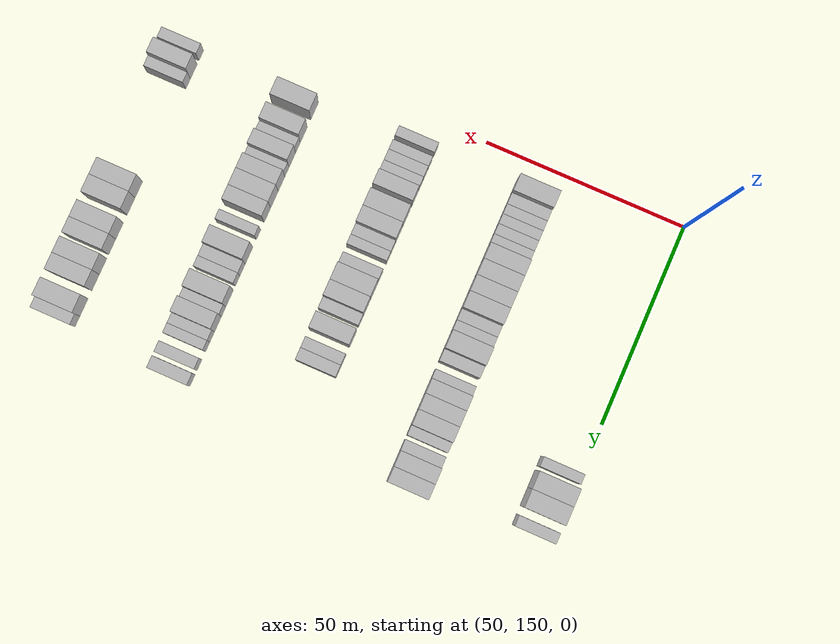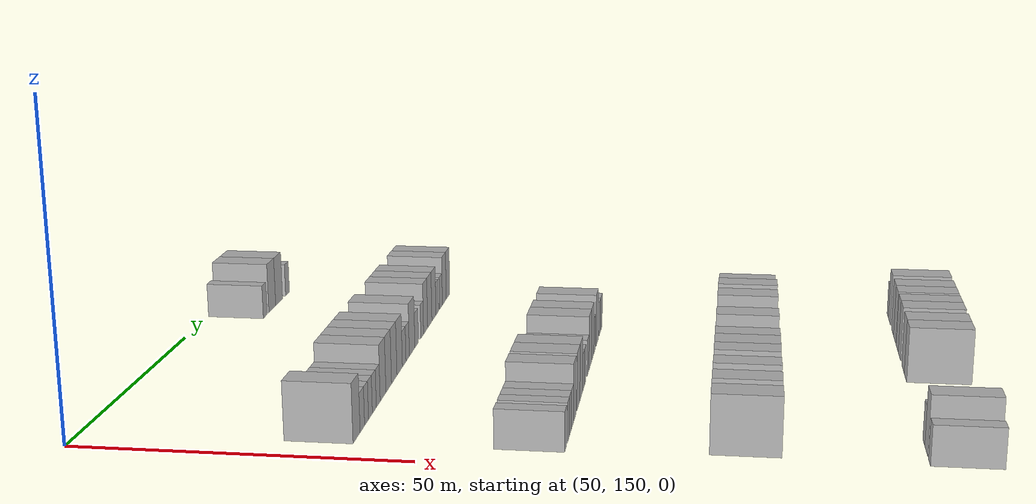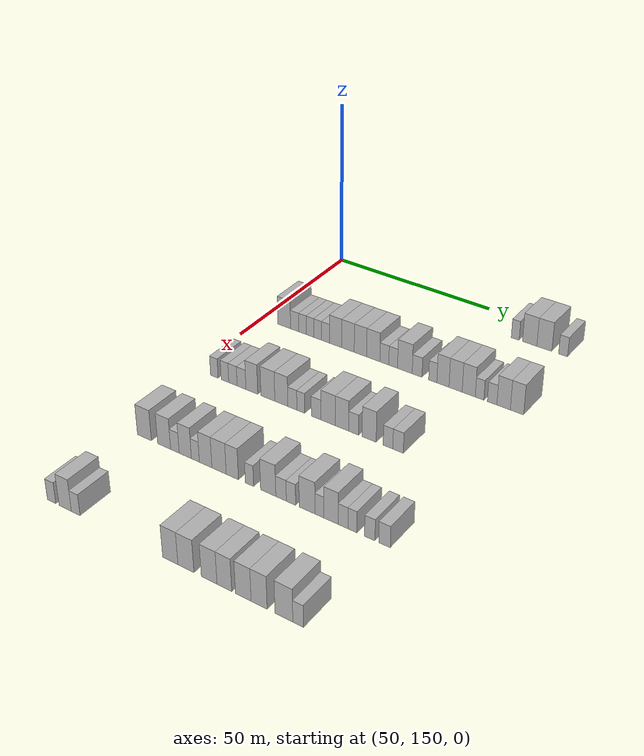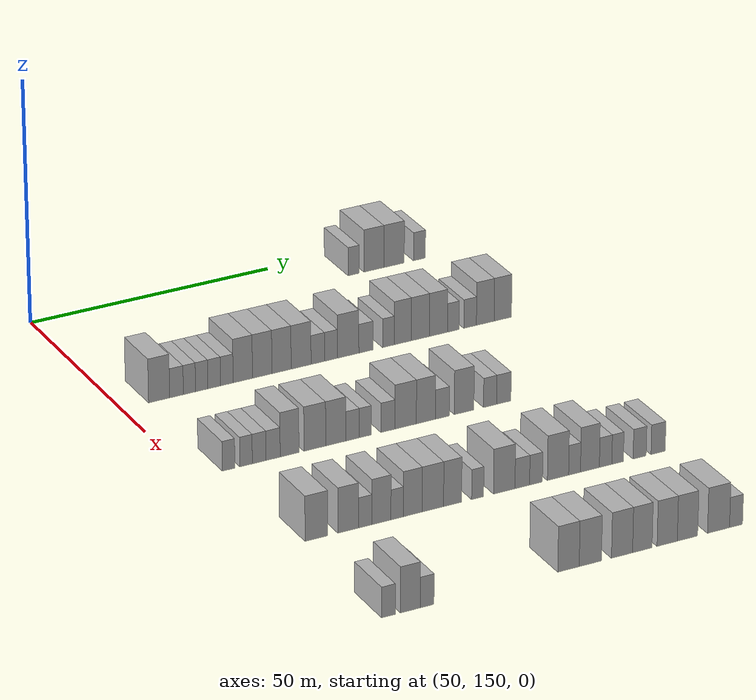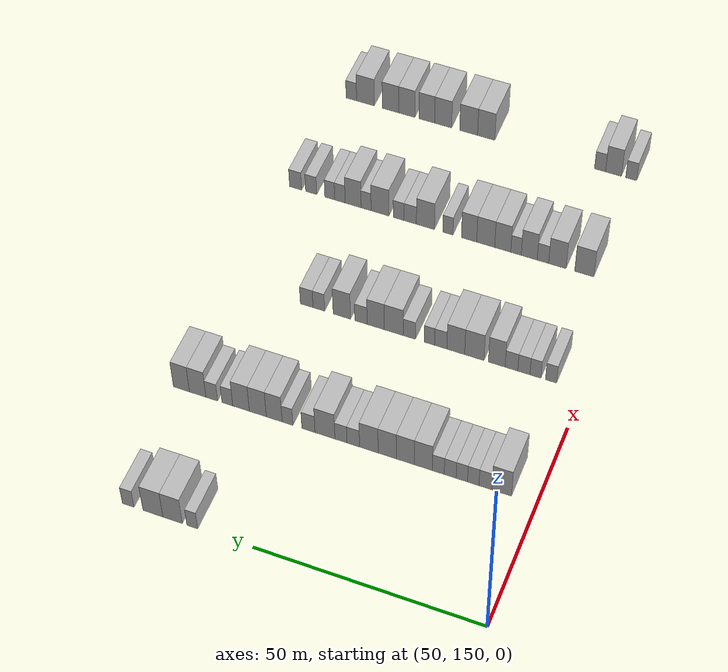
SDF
<sdf version="1.6">
 <world name="default">
  <model name="building_391">
   <static>1</static>
   <pose>55.0000 213.3606 0 0.000000 0.000000 0.000000</pose>
   <link name="link">
    <pose>0 0 3.00 0 0 0</pose>
    <collision name="collision"><geometry><box><size>10.0000 2.4069 6.0000</size></box></geometry></collision>
    <visual name="visual">
     <cast_shadows>0</cast_shadows>
     <geometry><box><size>10.0000 2.4069 6.0000</size></box></geometry>
     <material>
      <script>
       <uri>model://HANNAS_wall/materials/scripts</uri>
       <uri>model://HANNAS_wall/materials/textures</uri>
       <name>vrc/HANNAS_wall</name>
      </script>
     </material>
    </visual>
   </link>
  </model>
  <model name="building_392">
   <static>1</static>
   <pose>55.0000 217.7240 0 0.000000 0.000000 0.000000</pose>
   <link name="link">
    <pose>0 0 4.50 0 0 0</pose>
    <collision name="collision"><geometry><box><size>10.0000 4.3198 9.0000</size></box></geometry></collision>
    <visual name="visual">
     <cast_shadows>0</cast_shadows>
     <geometry><box><size>10.0000 4.3198 9.0000</size></box></geometry>
     <material>
      <script>
       <uri>model://HANNAS_wall/materials/scripts</uri>
       <uri>model://HANNAS_wall/materials/textures</uri>
       <name>vrc/HANNAS_wall</name>
      </script>
     </material>
    </visual>
   </link>
  </model>
  <model name="building_393">
   <static>1</static>
   <pose>55.0000 222.1121 0 0.000000 0.000000 0.000000</pose>
   <link name="link">
    <pose>0 0 4.50 0 0 0</pose>
    <collision name="collision"><geometry><box><size>10.0000 4.4565 9.0000</size></box></geometry></collision>
    <visual name="visual">
     <cast_shadows>0</cast_shadows>
     <geometry><box><size>10.0000 4.4565 9.0000</size></box></geometry>
     <material>
      <script>
       <uri>model://HANNAS_wall/materials/scripts</uri>
       <uri>model://HANNAS_wall/materials/textures</uri>
       <name>vrc/HANNAS_wall</name>
      </script>
     </material>
    </visual>
   </link>
  </model>
  <model name="building_394">
   <static>1</static>
   <pose>55.0000 227.6520 0 0.000000 0.000000 0.000000</pose>
   <link name="link">
    <pose>0 0 3.00 0 0 0</pose>
    <collision name="collision"><geometry><box><size>10.0000 2.6233 6.0000</size></box></geometry></collision>
    <visual name="visual">
     <cast_shadows>0</cast_shadows>
     <geometry><box><size>10.0000 2.6233 6.0000</size></box></geometry>
     <material>
      <script>
       <uri>model://HANNAS_wall/materials/scripts</uri>
       <uri>model://HANNAS_wall/materials/textures</uri>
       <name>vrc/HANNAS_wall</name>
      </script>
     </material>
    </visual>
   </link>
  </model>
  <model name="building_603">
   <static>1</static>
   <pose>85.0000 157.6642 0 0.000000 0.000000 0.000000</pose>
   <link name="link">
    <pose>0 0 4.50 0 0 0</pose>
    <collision name="collision"><geometry><box><size>10.0000 4.2818 9.0000</size></box></geometry></collision>
    <visual name="visual">
     <cast_shadows>0</cast_shadows>
     <geometry><box><size>10.0000 4.2818 9.0000</size></box></geometry>
     <material>
      <script>
       <uri>model://HANNAS_wall/materials/scripts</uri>
       <uri>model://HANNAS_wall/materials/textures</uri>
       <name>vrc/HANNAS_wall</name>
      </script>
     </material>
    </visual>
   </link>
  </model>
  <model name="building_604">
   <static>1</static>
   <pose>85.0000 161.2029 0 0.000000 0.000000 0.000000</pose>
   <link name="link">
    <pose>0 0 3.00 0 0 0</pose>
    <collision name="collision"><geometry><box><size>10.0000 2.7956 6.0000</size></box></geometry></collision>
    <visual name="visual">
     <cast_shadows>0</cast_shadows>
     <geometry><box><size>10.0000 2.7956 6.0000</size></box></geometry>
     <material>
      <script>
       <uri>model://HANNAS_wall/materials/scripts</uri>
       <uri>model://HANNAS_wall/materials/textures</uri>
       <name>vrc/HANNAS_wall</name>
      </script>
     </material>
    </visual>
   </link>
  </model>
  <model name="building_605">
   <static>1</static>
   <pose>85.0000 163.8454 0 0.000000 0.000000 0.000000</pose>
   <link name="link">
    <pose>0 0 3.00 0 0 0</pose>
    <collision name="collision"><geometry><box><size>10.0000 2.4894 6.0000</size></box></geometry></collision>
    <visual name="visual">
     <cast_shadows>0</cast_shadows>
     <geometry><box><size>10.0000 2.4894 6.0000</size></box></geometry>
     <material>
      <script>
       <uri>model://HANNAS_wall/materials/scripts</uri>
       <uri>model://HANNAS_wall/materials/textures</uri>
       <name>vrc/HANNAS_wall</name>
      </script>
     </material>
    </visual>
   </link>
  </model>
  <model name="building_606">
   <static>1</static>
   <pose>85.0000 166.3399 0 0.000000 0.000000 0.000000</pose>
   <link name="link">
    <pose>0 0 3.00 0 0 0</pose>
    <collision name="collision"><geometry><box><size>10.0000 2.4997 6.0000</size></box></geometry></collision>
    <visual name="visual">
     <cast_shadows>0</cast_shadows>
     <geometry><box><size>10.0000 2.4997 6.0000</size></box></geometry>
     <material>
      <script>
       <uri>model://HANNAS_wall/materials/scripts</uri>
       <uri>model://HANNAS_wall/materials/textures</uri>
       <name>vrc/HANNAS_wall</name>
      </script>
     </material>
    </visual>
   </link>
  </model>
  <model name="building_607">
   <static>1</static>
   <pose>85.0000 168.8861 0 0.000000 0.000000 0.000000</pose>
   <link name="link">
    <pose>0 0 3.00 0 0 0</pose>
    <collision name="collision"><geometry><box><size>10.0000 2.5927 6.0000</size></box></geometry></collision>
    <visual name="visual">
     <cast_shadows>0</cast_shadows>
     <geometry><box><size>10.0000 2.5927 6.0000</size></box></geometry>
     <material>
      <script>
       <uri>model://HANNAS_wall/materials/scripts</uri>
       <uri>model://HANNAS_wall/materials/textures</uri>
       <name>vrc/HANNAS_wall</name>
      </script>
     </material>
    </visual>
   </link>
  </model>
  <model name="building_608">
   <static>1</static>
   <pose>85.0000 171.4843 0 0.000000 0.000000 0.000000</pose>
   <link name="link">
    <pose>0 0 3.00 0 0 0</pose>
    <collision name="collision"><geometry><box><size>10.0000 2.6037 6.0000</size></box></geometry></collision>
    <visual name="visual">
     <cast_shadows>0</cast_shadows>
     <geometry><box><size>10.0000 2.6037 6.0000</size></box></geometry>
     <material>
      <script>
       <uri>model://HANNAS_wall/materials/scripts</uri>
       <uri>model://HANNAS_wall/materials/textures</uri>
       <name>vrc/HANNAS_wall</name>
      </script>
     </material>
    </visual>
   </link>
  </model>
  <model name="building_609">
   <static>1</static>
   <pose>85.0000 174.7784 0 0.000000 0.000000 0.000000</pose>
   <link name="link">
    <pose>0 0 4.50 0 0 0</pose>
    <collision name="collision"><geometry><box><size>10.0000 3.9846 9.0000</size></box></geometry></collision>
    <visual name="visual">
     <cast_shadows>0</cast_shadows>
     <geometry><box><size>10.0000 3.9846 9.0000</size></box></geometry>
     <material>
      <script>
       <uri>model://HANNAS_wall/materials/scripts</uri>
       <uri>model://HANNAS_wall/materials/textures</uri>
       <name>vrc/HANNAS_wall</name>
      </script>
     </material>
    </visual>
   </link>
  </model>
  <model name="building_610">
   <static>1</static>
   <pose>85.0000 178.7785 0 0.000000 0.000000 0.000000</pose>
   <link name="link">
    <pose>0 0 4.50 0 0 0</pose>
    <collision name="collision"><geometry><box><size>10.0000 4.0155 9.0000</size></box></geometry></collision>
    <visual name="visual">
     <cast_shadows>0</cast_shadows>
     <geometry><box><size>10.0000 4.0155 9.0000</size></box></geometry>
     <material>
      <script>
       <uri>model://HANNAS_wall/materials/scripts</uri>
       <uri>model://HANNAS_wall/materials/textures</uri>
       <name>vrc/HANNAS_wall</name>
      </script>
     </material>
    </visual>
   </link>
  </model>
  <model name="building_611">
   <static>1</static>
   <pose>85.0000 182.7801 0 0.000000 0.000000 0.000000</pose>
   <link name="link">
    <pose>0 0 4.50 0 0 0</pose>
    <collision name="collision"><geometry><box><size>10.0000 3.9876 9.0000</size></box></geometry></collision>
    <visual name="visual">
     <cast_shadows>0</cast_shadows>
     <geometry><box><size>10.0000 3.9876 9.0000</size></box></geometry>
     <material>
      <script>
       <uri>model://HANNAS_wall/materials/scripts</uri>
       <uri>model://HANNAS_wall/materials/textures</uri>
       <name>vrc/HANNAS_wall</name>
      </script>
     </material>
    </visual>
   </link>
  </model>
  <model name="building_612">
   <static>1</static>
   <pose>85.0000 186.8461 0 0.000000 0.000000 0.000000</pose>
   <link name="link">
    <pose>0 0 4.50 0 0 0</pose>
    <collision name="collision"><geometry><box><size>10.0000 4.1445 9.0000</size></box></geometry></collision>
    <visual name="visual">
     <cast_shadows>0</cast_shadows>
     <geometry><box><size>10.0000 4.1445 9.0000</size></box></geometry>
     <material>
      <script>
       <uri>model://HANNAS_wall/materials/scripts</uri>
       <uri>model://HANNAS_wall/materials/textures</uri>
       <name>vrc/HANNAS_wall</name>
      </script>
     </material>
    </visual>
   </link>
  </model>
  <model name="building_613">
   <static>1</static>
   <pose>85.0000 190.3230 0 0.000000 0.000000 0.000000</pose>
   <link name="link">
    <pose>0 0 3.00 0 0 0</pose>
    <collision name="collision"><geometry><box><size>10.0000 2.8091 6.0000</size></box></geometry></collision>
    <visual name="visual">
     <cast_shadows>0</cast_shadows>
     <geometry><box><size>10.0000 2.8091 6.0000</size></box></geometry>
     <material>
      <script>
       <uri>model://HANNAS_wall/materials/scripts</uri>
       <uri>model://HANNAS_wall/materials/textures</uri>
       <name>vrc/HANNAS_wall</name>
      </script>
     </material>
    </visual>
   </link>
  </model>
  <model name="building_614">
   <static>1</static>
   <pose>85.0000 193.0762 0 0.000000 0.000000 0.000000</pose>
   <link name="link">
    <pose>0 0 3.00 0 0 0</pose>
    <collision name="collision"><geometry><box><size>10.0000 2.6974 6.0000</size></box></geometry></collision>
    <visual name="visual">
     <cast_shadows>0</cast_shadows>
     <geometry><box><size>10.0000 2.6974 6.0000</size></box></geometry>
     <material>
      <script>
       <uri>model://HANNAS_wall/materials/scripts</uri>
       <uri>model://HANNAS_wall/materials/textures</uri>
       <name>vrc/HANNAS_wall</name>
      </script>
     </material>
    </visual>
   </link>
  </model>
  <model name="building_615">
   <static>1</static>
   <pose>85.0000 196.6733 0 0.000000 0.000000 0.000000</pose>
   <link name="link">
    <pose>0 0 4.50 0 0 0</pose>
    <collision name="collision"><geometry><box><size>10.0000 4.4967 9.0000</size></box></geometry></collision>
    <visual name="visual">
     <cast_shadows>0</cast_shadows>
     <geometry><box><size>10.0000 4.4967 9.0000</size></box></geometry>
     <material>
      <script>
       <uri>model://HANNAS_wall/materials/scripts</uri>
       <uri>model://HANNAS_wall/materials/textures</uri>
       <name>vrc/HANNAS_wall</name>
      </script>
     </material>
    </visual>
   </link>
  </model>
  <model name="building_616">
   <static>1</static>
   <pose>85.0000 200.4093 0 0.000000 0.000000 0.000000</pose>
   <link name="link">
    <pose>0 0 3.00 0 0 0</pose>
    <collision name="collision"><geometry><box><size>10.0000 2.9753 6.0000</size></box></geometry></collision>
    <visual name="visual">
     <cast_shadows>0</cast_shadows>
     <geometry><box><size>10.0000 2.9753 6.0000</size></box></geometry>
     <material>
      <script>
       <uri>model://HANNAS_wall/materials/scripts</uri>
       <uri>model://HANNAS_wall/materials/textures</uri>
       <name>vrc/HANNAS_wall</name>
      </script>
     </material>
    </visual>
   </link>
  </model>
  <model name="building_617">
   <static>1</static>
   <pose>85.0000 205.1252 0 0.000000 0.000000 0.000000</pose>
   <link name="link">
    <pose>0 0 3.00 0 0 0</pose>
    <collision name="collision"><geometry><box><size>10.0000 2.4564 6.0000</size></box></geometry></collision>
    <visual name="visual">
     <cast_shadows>0</cast_shadows>
     <geometry><box><size>10.0000 2.4564 6.0000</size></box></geometry>
     <material>
      <script>
       <uri>model://HANNAS_wall/materials/scripts</uri>
       <uri>model://HANNAS_wall/materials/textures</uri>
       <name>vrc/HANNAS_wall</name>
      </script>
     </material>
    </visual>
   </link>
  </model>
  <model name="building_618">
   <static>1</static>
   <pose>85.0000 208.1600 0 0.000000 0.000000 0.000000</pose>
   <link name="link">
    <pose>0 0 4.50 0 0 0</pose>
    <collision name="collision"><geometry><box><size>10.0000 3.6132 9.0000</size></box></geometry></collision>
    <visual name="visual">
     <cast_shadows>0</cast_shadows>
     <geometry><box><size>10.0000 3.6132 9.0000</size></box></geometry>
     <material>
      <script>
       <uri>model://HANNAS_wall/materials/scripts</uri>
       <uri>model://HANNAS_wall/materials/textures</uri>
       <name>vrc/HANNAS_wall</name>
      </script>
     </material>
    </visual>
   </link>
  </model>
  <model name="building_619">
   <static>1</static>
   <pose>85.0000 211.9068 0 0.000000 0.000000 0.000000</pose>
   <link name="link">
    <pose>0 0 4.50 0 0 0</pose>
    <collision name="collision"><geometry><box><size>10.0000 3.8805 9.0000</size></box></geometry></collision>
    <visual name="visual">
     <cast_shadows>0</cast_shadows>
     <geometry><box><size>10.0000 3.8805 9.0000</size></box></geometry>
     <material>
      <script>
       <uri>model://HANNAS_wall/materials/scripts</uri>
       <uri>model://HANNAS_wall/materials/textures</uri>
       <name>vrc/HANNAS_wall</name>
      </script>
     </material>
    </visual>
   </link>
  </model>
  <model name="building_620">
   <static>1</static>
   <pose>85.0000 215.7559 0 0.000000 0.000000 0.000000</pose>
   <link name="link">
    <pose>0 0 4.50 0 0 0</pose>
    <collision name="collision"><geometry><box><size>10.0000 3.8176 9.0000</size></box></geometry></collision>
    <visual name="visual">
     <cast_shadows>0</cast_shadows>
     <geometry><box><size>10.0000 3.8176 9.0000</size></box></geometry>
     <material>
      <script>
       <uri>model://HANNAS_wall/materials/scripts</uri>
       <uri>model://HANNAS_wall/materials/textures</uri>
       <name>vrc/HANNAS_wall</name>
      </script>
     </material>
    </visual>
   </link>
  </model>
  <model name="building_621">
   <static>1</static>
   <pose>85.0000 218.9044 0 0.000000 0.000000 0.000000</pose>
   <link name="link">
    <pose>0 0 3.00 0 0 0</pose>
    <collision name="collision"><geometry><box><size>10.0000 2.4795 6.0000</size></box></geometry></collision>
    <visual name="visual">
     <cast_shadows>0</cast_shadows>
     <geometry><box><size>10.0000 2.4795 6.0000</size></box></geometry>
     <material>
      <script>
       <uri>model://HANNAS_wall/materials/scripts</uri>
       <uri>model://HANNAS_wall/materials/textures</uri>
       <name>vrc/HANNAS_wall</name>
      </script>
     </material>
    </visual>
   </link>
  </model>
  <model name="building_622">
   <static>1</static>
   <pose>85.0000 222.4978 0 0.000000 0.000000 0.000000</pose>
   <link name="link">
    <pose>0 0 3.00 0 0 0</pose>
    <collision name="collision"><geometry><box><size>10.0000 2.7072 6.0000</size></box></geometry></collision>
    <visual name="visual">
     <cast_shadows>0</cast_shadows>
     <geometry><box><size>10.0000 2.7072 6.0000</size></box></geometry>
     <material>
      <script>
       <uri>model://HANNAS_wall/materials/scripts</uri>
       <uri>model://HANNAS_wall/materials/textures</uri>
       <name>vrc/HANNAS_wall</name>
      </script>
     </material>
    </visual>
   </link>
  </model>
  <model name="building_623">
   <static>1</static>
   <pose>85.0000 225.7563 0 0.000000 0.000000 0.000000</pose>
   <link name="link">
    <pose>0 0 4.50 0 0 0</pose>
    <collision name="collision"><geometry><box><size>10.0000 3.8098 9.0000</size></box></geometry></collision>
    <visual name="visual">
     <cast_shadows>0</cast_shadows>
     <geometry><box><size>10.0000 3.8098 9.0000</size></box></geometry>
     <material>
      <script>
       <uri>model://HANNAS_wall/materials/scripts</uri>
       <uri>model://HANNAS_wall/materials/textures</uri>
       <name>vrc/HANNAS_wall</name>
      </script>
     </material>
    </visual>
   </link>
  </model>
  <model name="building_624">
   <static>1</static>
   <pose>85.0000 229.5262 0 0.000000 0.000000 0.000000</pose>
   <link name="link">
    <pose>0 0 4.50 0 0 0</pose>
    <collision name="collision"><geometry><box><size>10.0000 3.7300 9.0000</size></box></geometry></collision>
    <visual name="visual">
     <cast_shadows>0</cast_shadows>
     <geometry><box><size>10.0000 3.7300 9.0000</size></box></geometry>
     <material>
      <script>
       <uri>model://HANNAS_wall/materials/scripts</uri>
       <uri>model://HANNAS_wall/materials/textures</uri>
       <name>vrc/HANNAS_wall</name>
      </script>
     </material>
    </visual>
   </link>
  </model>
  <model name="building_839">
   <static>1</static>
   <pose>115.0000 157.0861 0 0.000000 0.000000 0.000000</pose>
   <link name="link">
    <pose>0 0 3.00 0 0 0</pose>
    <collision name="collision"><geometry><box><size>10.0000 2.5148 6.0000</size></box></geometry></collision>
    <visual name="visual">
     <cast_shadows>0</cast_shadows>
     <geometry><box><size>10.0000 2.5148 6.0000</size></box></geometry>
     <material>
      <script>
       <uri>model://HANNAS_wall/materials/scripts</uri>
       <uri>model://HANNAS_wall/materials/textures</uri>
       <name>vrc/HANNAS_wall</name>
      </script>
     </material>
    </visual>
   </link>
  </model>
  <model name="building_840">
   <static>1</static>
   <pose>115.0000 160.5882 0 0.000000 0.000000 0.000000</pose>
   <link name="link">
    <pose>0 0 3.00 0 0 0</pose>
    <collision name="collision"><geometry><box><size>10.0000 2.4893 6.0000</size></box></geometry></collision>
    <visual name="visual">
     <cast_shadows>0</cast_shadows>
     <geometry><box><size>10.0000 2.4893 6.0000</size></box></geometry>
     <material>
      <script>
       <uri>model://HANNAS_wall/materials/scripts</uri>
       <uri>model://HANNAS_wall/materials/textures</uri>
       <name>vrc/HANNAS_wall</name>
      </script>
     </material>
    </visual>
   </link>
  </model>
  <model name="building_841">
   <static>1</static>
   <pose>115.0000 163.2018 0 0.000000 0.000000 0.000000</pose>
   <link name="link">
    <pose>0 0 3.00 0 0 0</pose>
    <collision name="collision"><geometry><box><size>10.0000 2.7381 6.0000</size></box></geometry></collision>
    <visual name="visual">
     <cast_shadows>0</cast_shadows>
     <geometry><box><size>10.0000 2.7381 6.0000</size></box></geometry>
     <material>
      <script>
       <uri>model://HANNAS_wall/materials/scripts</uri>
       <uri>model://HANNAS_wall/materials/textures</uri>
       <name>vrc/HANNAS_wall</name>
      </script>
     </material>
    </visual>
   </link>
  </model>
  <model name="building_842">
   <static>1</static>
   <pose>115.0000 165.9968 0 0.000000 0.000000 0.000000</pose>
   <link name="link">
    <pose>0 0 3.00 0 0 0</pose>
    <collision name="collision"><geometry><box><size>10.0000 2.8517 6.0000</size></box></geometry></collision>
    <visual name="visual">
     <cast_shadows>0</cast_shadows>
     <geometry><box><size>10.0000 2.8517 6.0000</size></box></geometry>
     <material>
      <script>
       <uri>model://HANNAS_wall/materials/scripts</uri>
       <uri>model://HANNAS_wall/materials/textures</uri>
       <name>vrc/HANNAS_wall</name>
      </script>
     </material>
    </visual>
   </link>
  </model>
  <model name="building_843">
   <static>1</static>
   <pose>115.0000 169.3174 0 0.000000 0.000000 0.000000</pose>
   <link name="link">
    <pose>0 0 4.50 0 0 0</pose>
    <collision name="collision"><geometry><box><size>10.0000 3.7896 9.0000</size></box></geometry></collision>
    <visual name="visual">
     <cast_shadows>0</cast_shadows>
     <geometry><box><size>10.0000 3.7896 9.0000</size></box></geometry>
     <material>
      <script>
       <uri>model://HANNAS_wall/materials/scripts</uri>
       <uri>model://HANNAS_wall/materials/textures</uri>
       <name>vrc/HANNAS_wall</name>
      </script>
     </material>
    </visual>
   </link>
  </model>
  <model name="building_844">
   <static>1</static>
   <pose>115.0000 174.4126 0 0.000000 0.000000 0.000000</pose>
   <link name="link">
    <pose>0 0 4.50 0 0 0</pose>
    <collision name="collision"><geometry><box><size>10.0000 4.4009 9.0000</size></box></geometry></collision>
    <visual name="visual">
     <cast_shadows>0</cast_shadows>
     <geometry><box><size>10.0000 4.4009 9.0000</size></box></geometry>
     <material>
      <script>
       <uri>model://HANNAS_wall/materials/scripts</uri>
       <uri>model://HANNAS_wall/materials/textures</uri>
       <name>vrc/HANNAS_wall</name>
      </script>
     </material>
    </visual>
   </link>
  </model>
  <model name="building_845">
   <static>1</static>
   <pose>115.0000 178.6483 0 0.000000 0.000000 0.000000</pose>
   <link name="link">
    <pose>0 0 4.50 0 0 0</pose>
    <collision name="collision"><geometry><box><size>10.0000 4.0705 9.0000</size></box></geometry></collision>
    <visual name="visual">
     <cast_shadows>0</cast_shadows>
     <geometry><box><size>10.0000 4.0705 9.0000</size></box></geometry>
     <material>
      <script>
       <uri>model://HANNAS_wall/materials/scripts</uri>
       <uri>model://HANNAS_wall/materials/textures</uri>
       <name>vrc/HANNAS_wall</name>
      </script>
     </material>
    </visual>
   </link>
  </model>
  <model name="building_846">
   <static>1</static>
   <pose>115.0000 182.0744 0 0.000000 0.000000 0.000000</pose>
   <link name="link">
    <pose>0 0 3.00 0 0 0</pose>
    <collision name="collision"><geometry><box><size>10.0000 2.7815 6.0000</size></box></geometry></collision>
    <visual name="visual">
     <cast_shadows>0</cast_shadows>
     <geometry><box><size>10.0000 2.7815 6.0000</size></box></geometry>
     <material>
      <script>
       <uri>model://HANNAS_wall/materials/scripts</uri>
       <uri>model://HANNAS_wall/materials/textures</uri>
       <name>vrc/HANNAS_wall</name>
      </script>
     </material>
    </visual>
   </link>
  </model>
  <model name="building_847">
   <static>1</static>
   <pose>115.0000 184.6671 0 0.000000 0.000000 0.000000</pose>
   <link name="link">
    <pose>0 0 3.00 0 0 0</pose>
    <collision name="collision"><geometry><box><size>10.0000 2.4040 6.0000</size></box></geometry></collision>
    <visual name="visual">
     <cast_shadows>0</cast_shadows>
     <geometry><box><size>10.0000 2.4040 6.0000</size></box></geometry>
     <material>
      <script>
       <uri>model://HANNAS_wall/materials/scripts</uri>
       <uri>model://HANNAS_wall/materials/textures</uri>
       <name>vrc/HANNAS_wall</name>
      </script>
     </material>
    </visual>
   </link>
  </model>
  <model name="building_848">
   <static>1</static>
   <pose>115.0000 189.3173 0 0.000000 0.000000 0.000000</pose>
   <link name="link">
    <pose>0 0 3.00 0 0 0</pose>
    <collision name="collision"><geometry><box><size>10.0000 2.8965 6.0000</size></box></geometry></collision>
    <visual name="visual">
     <cast_shadows>0</cast_shadows>
     <geometry><box><size>10.0000 2.8965 6.0000</size></box></geometry>
     <material>
      <script>
       <uri>model://HANNAS_wall/materials/scripts</uri>
       <uri>model://HANNAS_wall/materials/textures</uri>
       <name>vrc/HANNAS_wall</name>
      </script>
     </material>
    </visual>
   </link>
  </model>
  <model name="building_849">
   <static>1</static>
   <pose>115.0000 192.9507 0 0.000000 0.000000 0.000000</pose>
   <link name="link">
    <pose>0 0 4.50 0 0 0</pose>
    <collision name="collision"><geometry><box><size>10.0000 4.3703 9.0000</size></box></geometry></collision>
    <visual name="visual">
     <cast_shadows>0</cast_shadows>
     <geometry><box><size>10.0000 4.3703 9.0000</size></box></geometry>
     <material>
      <script>
       <uri>model://HANNAS_wall/materials/scripts</uri>
       <uri>model://HANNAS_wall/materials/textures</uri>
       <name>vrc/HANNAS_wall</name>
      </script>
     </material>
    </visual>
   </link>
  </model>
  <model name="building_850">
   <static>1</static>
   <pose>115.0000 197.1138 0 0.000000 0.000000 0.000000</pose>
   <link name="link">
    <pose>0 0 4.50 0 0 0</pose>
    <collision name="collision"><geometry><box><size>10.0000 3.9559 9.0000</size></box></geometry></collision>
    <visual name="visual">
     <cast_shadows>0</cast_shadows>
     <geometry><box><size>10.0000 3.9559 9.0000</size></box></geometry>
     <material>
      <script>
       <uri>model://HANNAS_wall/materials/scripts</uri>
       <uri>model://HANNAS_wall/materials/textures</uri>
       <name>vrc/HANNAS_wall</name>
      </script>
     </material>
    </visual>
   </link>
  </model>
  <model name="building_851">
   <static>1</static>
   <pose>115.0000 200.5352 0 0.000000 0.000000 0.000000</pose>
   <link name="link">
    <pose>0 0 3.00 0 0 0</pose>
    <collision name="collision"><geometry><box><size>10.0000 2.8870 6.0000</size></box></geometry></collision>
    <visual name="visual">
     <cast_shadows>0</cast_shadows>
     <geometry><box><size>10.0000 2.8870 6.0000</size></box></geometry>
     <material>
      <script>
       <uri>model://HANNAS_wall/materials/scripts</uri>
       <uri>model://HANNAS_wall/materials/textures</uri>
       <name>vrc/HANNAS_wall</name>
      </script>
     </material>
    </visual>
   </link>
  </model>
  <model name="building_852">
   <static>1</static>
   <pose>115.0000 205.0086 0 0.000000 0.000000 0.000000</pose>
   <link name="link">
    <pose>0 0 4.50 0 0 0</pose>
    <collision name="collision"><geometry><box><size>10.0000 4.0597 9.0000</size></box></geometry></collision>
    <visual name="visual">
     <cast_shadows>0</cast_shadows>
     <geometry><box><size>10.0000 4.0597 9.0000</size></box></geometry>
     <material>
      <script>
       <uri>model://HANNAS_wall/materials/scripts</uri>
       <uri>model://HANNAS_wall/materials/textures</uri>
       <name>vrc/HANNAS_wall</name>
      </script>
     </material>
    </visual>
   </link>
  </model>
  <model name="building_853">
   <static>1</static>
   <pose>115.0000 210.4139 0 0.000000 0.000000 0.000000</pose>
   <link name="link">
    <pose>0 0 3.00 0 0 0</pose>
    <collision name="collision"><geometry><box><size>10.0000 2.7509 6.0000</size></box></geometry></collision>
    <visual name="visual">
     <cast_shadows>0</cast_shadows>
     <geometry><box><size>10.0000 2.7509 6.0000</size></box></geometry>
     <material>
      <script>
       <uri>model://HANNAS_wall/materials/scripts</uri>
       <uri>model://HANNAS_wall/materials/textures</uri>
       <name>vrc/HANNAS_wall</name>
      </script>
     </material>
    </visual>
   </link>
  </model>
  <model name="building_854">
   <static>1</static>
   <pose>115.0000 213.2731 0 0.000000 0.000000 0.000000</pose>
   <link name="link">
    <pose>0 0 3.00 0 0 0</pose>
    <collision name="collision"><geometry><box><size>10.0000 2.9676 6.0000</size></box></geometry></collision>
    <visual name="visual">
     <cast_shadows>0</cast_shadows>
     <geometry><box><size>10.0000 2.9676 6.0000</size></box></geometry>
     <material>
      <script>
       <uri>model://HANNAS_wall/materials/scripts</uri>
       <uri>model://HANNAS_wall/materials/textures</uri>
       <name>vrc/HANNAS_wall</name>
      </script>
     </material>
    </visual>
   </link>
  </model>
  <model name="building_1073">
   <static>1</static>
   <pose>145.0000 159.4335 0 0.000000 0.000000 0.000000</pose>
   <link name="link">
    <pose>0 0 4.50 0 0 0</pose>
    <collision name="collision"><geometry><box><size>10.0000 4.4416 9.0000</size></box></geometry></collision>
    <visual name="visual">
     <cast_shadows>0</cast_shadows>
     <geometry><box><size>10.0000 4.4416 9.0000</size></box></geometry>
     <material>
      <script>
       <uri>model://HANNAS_wall/materials/scripts</uri>
       <uri>model://HANNAS_wall/materials/textures</uri>
       <name>vrc/HANNAS_wall</name>
      </script>
     </material>
    </visual>
   </link>
  </model>
  <model name="building_1074">
   <static>1</static>
   <pose>145.0000 165.6922 0 0.000000 0.000000 0.000000</pose>
   <link name="link">
    <pose>0 0 4.50 0 0 0</pose>
    <collision name="collision"><geometry><box><size>10.0000 4.0757 9.0000</size></box></geometry></collision>
    <visual name="visual">
     <cast_shadows>0</cast_shadows>
     <geometry><box><size>10.0000 4.0757 9.0000</size></box></geometry>
     <material>
      <script>
       <uri>model://HANNAS_wall/materials/scripts</uri>
       <uri>model://HANNAS_wall/materials/textures</uri>
       <name>vrc/HANNAS_wall</name>
      </script>
     </material>
    </visual>
   </link>
  </model>
  <model name="building_1075">
   <static>1</static>
   <pose>145.0000 169.0649 0 0.000000 0.000000 0.000000</pose>
   <link name="link">
    <pose>0 0 3.00 0 0 0</pose>
    <collision name="collision"><geometry><box><size>10.0000 2.6698 6.0000</size></box></geometry></collision>
    <visual name="visual">
     <cast_shadows>0</cast_shadows>
     <geometry><box><size>10.0000 2.6698 6.0000</size></box></geometry>
     <material>
      <script>
       <uri>model://HANNAS_wall/materials/scripts</uri>
       <uri>model://HANNAS_wall/materials/textures</uri>
       <name>vrc/HANNAS_wall</name>
      </script>
     </material>
    </visual>
   </link>
  </model>
  <model name="building_1076">
   <static>1</static>
   <pose>145.0000 172.2774 0 0.000000 0.000000 0.000000</pose>
   <link name="link">
    <pose>0 0 4.50 0 0 0</pose>
    <collision name="collision"><geometry><box><size>10.0000 3.7553 9.0000</size></box></geometry></collision>
    <visual name="visual">
     <cast_shadows>0</cast_shadows>
     <geometry><box><size>10.0000 3.7553 9.0000</size></box></geometry>
     <material>
      <script>
       <uri>model://HANNAS_wall/materials/scripts</uri>
       <uri>model://HANNAS_wall/materials/textures</uri>
       <name>vrc/HANNAS_wall</name>
      </script>
     </material>
    </visual>
   </link>
  </model>
  <model name="building_1077">
   <static>1</static>
   <pose>145.0000 175.3788 0 0.000000 0.000000 0.000000</pose>
   <link name="link">
    <pose>0 0 3.00 0 0 0</pose>
    <collision name="collision"><geometry><box><size>10.0000 2.4475 6.0000</size></box></geometry></collision>
    <visual name="visual">
     <cast_shadows>0</cast_shadows>
     <geometry><box><size>10.0000 2.4475 6.0000</size></box></geometry>
     <material>
      <script>
       <uri>model://HANNAS_wall/materials/scripts</uri>
       <uri>model://HANNAS_wall/materials/textures</uri>
       <name>vrc/HANNAS_wall</name>
      </script>
     </material>
    </visual>
   </link>
  </model>
  <model name="building_1078">
   <static>1</static>
   <pose>145.0000 178.5002 0 0.000000 0.000000 0.000000</pose>
   <link name="link">
    <pose>0 0 4.50 0 0 0</pose>
    <collision name="collision"><geometry><box><size>10.0000 3.7953 9.0000</size></box></geometry></collision>
    <visual name="visual">
     <cast_shadows>0</cast_shadows>
     <geometry><box><size>10.0000 3.7953 9.0000</size></box></geometry>
     <material>
      <script>
       <uri>model://HANNAS_wall/materials/scripts</uri>
       <uri>model://HANNAS_wall/materials/textures</uri>
       <name>vrc/HANNAS_wall</name>
      </script>
     </material>
    </visual>
   </link>
  </model>
  <model name="building_1079">
   <static>1</static>
   <pose>145.0000 182.5301 0 0.000000 0.000000 0.000000</pose>
   <link name="link">
    <pose>0 0 4.50 0 0 0</pose>
    <collision name="collision"><geometry><box><size>10.0000 4.2645 9.0000</size></box></geometry></collision>
    <visual name="visual">
     <cast_shadows>0</cast_shadows>
     <geometry><box><size>10.0000 4.2645 9.0000</size></box></geometry>
     <material>
      <script>
       <uri>model://HANNAS_wall/materials/scripts</uri>
       <uri>model://HANNAS_wall/materials/textures</uri>
       <name>vrc/HANNAS_wall</name>
      </script>
     </material>
    </visual>
   </link>
  </model>
  <model name="building_1080">
   <static>1</static>
   <pose>145.0000 186.4764 0 0.000000 0.000000 0.000000</pose>
   <link name="link">
    <pose>0 0 4.50 0 0 0</pose>
    <collision name="collision"><geometry><box><size>10.0000 3.6282 9.0000</size></box></geometry></collision>
    <visual name="visual">
     <cast_shadows>0</cast_shadows>
     <geometry><box><size>10.0000 3.6282 9.0000</size></box></geometry>
     <material>
      <script>
       <uri>model://HANNAS_wall/materials/scripts</uri>
       <uri>model://HANNAS_wall/materials/textures</uri>
       <name>vrc/HANNAS_wall</name>
      </script>
     </material>
    </visual>
   </link>
  </model>
  <model name="building_1081">
   <static>1</static>
   <pose>145.0000 191.5067 0 0.000000 0.000000 0.000000</pose>
   <link name="link">
    <pose>0 0 3.00 0 0 0</pose>
    <collision name="collision"><geometry><box><size>10.0000 2.4323 6.0000</size></box></geometry></collision>
    <visual name="visual">
     <cast_shadows>0</cast_shadows>
     <geometry><box><size>10.0000 2.4323 6.0000</size></box></geometry>
     <material>
      <script>
       <uri>model://HANNAS_wall/materials/scripts</uri>
       <uri>model://HANNAS_wall/materials/textures</uri>
       <name>vrc/HANNAS_wall</name>
      </script>
     </material>
    </visual>
   </link>
  </model>
  <model name="building_1082">
   <static>1</static>
   <pose>145.0000 196.8936 0 0.000000 0.000000 0.000000</pose>
   <link name="link">
    <pose>0 0 4.50 0 0 0</pose>
    <collision name="collision"><geometry><box><size>10.0000 4.3415 9.0000</size></box></geometry></collision>
    <visual name="visual">
     <cast_shadows>0</cast_shadows>
     <geometry><box><size>10.0000 4.3415 9.0000</size></box></geometry>
     <material>
      <script>
       <uri>model://HANNAS_wall/materials/scripts</uri>
       <uri>model://HANNAS_wall/materials/textures</uri>
       <name>vrc/HANNAS_wall</name>
      </script>
     </material>
    </visual>
   </link>
  </model>
  <model name="building_1083">
   <static>1</static>
   <pose>145.0000 200.5496 0 0.000000 0.000000 0.000000</pose>
   <link name="link">
    <pose>0 0 3.00 0 0 0</pose>
    <collision name="collision"><geometry><box><size>10.0000 2.9704 6.0000</size></box></geometry></collision>
    <visual name="visual">
     <cast_shadows>0</cast_shadows>
     <geometry><box><size>10.0000 2.9704 6.0000</size></box></geometry>
     <material>
      <script>
       <uri>model://HANNAS_wall/materials/scripts</uri>
       <uri>model://HANNAS_wall/materials/textures</uri>
       <name>vrc/HANNAS_wall</name>
      </script>
     </material>
    </visual>
   </link>
  </model>
  <model name="building_1084">
   <static>1</static>
   <pose>145.0000 203.3436 0 0.000000 0.000000 0.000000</pose>
   <link name="link">
    <pose>0 0 3.00 0 0 0</pose>
    <collision name="collision"><geometry><box><size>10.0000 2.6176 6.0000</size></box></geometry></collision>
    <visual name="visual">
     <cast_shadows>0</cast_shadows>
     <geometry><box><size>10.0000 2.6176 6.0000</size></box></geometry>
     <material>
      <script>
       <uri>model://HANNAS_wall/materials/scripts</uri>
       <uri>model://HANNAS_wall/materials/textures</uri>
       <name>vrc/HANNAS_wall</name>
      </script>
     </material>
    </visual>
   </link>
  </model>
  <model name="building_1085">
   <static>1</static>
   <pose>145.0000 207.8226 0 0.000000 0.000000 0.000000</pose>
   <link name="link">
    <pose>0 0 4.50 0 0 0</pose>
    <collision name="collision"><geometry><box><size>10.0000 4.3404 9.0000</size></box></geometry></collision>
    <visual name="visual">
     <cast_shadows>0</cast_shadows>
     <geometry><box><size>10.0000 4.3404 9.0000</size></box></geometry>
     <material>
      <script>
       <uri>model://HANNAS_wall/materials/scripts</uri>
       <uri>model://HANNAS_wall/materials/textures</uri>
       <name>vrc/HANNAS_wall</name>
      </script>
     </material>
    </visual>
   </link>
  </model>
  <model name="building_1086">
   <static>1</static>
   <pose>145.0000 211.2106 0 0.000000 0.000000 0.000000</pose>
   <link name="link">
    <pose>0 0 3.00 0 0 0</pose>
    <collision name="collision"><geometry><box><size>10.0000 2.4356 6.0000</size></box></geometry></collision>
    <visual name="visual">
     <cast_shadows>0</cast_shadows>
     <geometry><box><size>10.0000 2.4356 6.0000</size></box></geometry>
     <material>
      <script>
       <uri>model://HANNAS_wall/materials/scripts</uri>
       <uri>model://HANNAS_wall/materials/textures</uri>
       <name>vrc/HANNAS_wall</name>
      </script>
     </material>
    </visual>
   </link>
  </model>
  <model name="building_1087">
   <static>1</static>
   <pose>145.0000 214.3698 0 0.000000 0.000000 0.000000</pose>
   <link name="link">
    <pose>0 0 4.50 0 0 0</pose>
    <collision name="collision"><geometry><box><size>10.0000 3.8827 9.0000</size></box></geometry></collision>
    <visual name="visual">
     <cast_shadows>0</cast_shadows>
     <geometry><box><size>10.0000 3.8827 9.0000</size></box></geometry>
     <material>
      <script>
       <uri>model://HANNAS_wall/materials/scripts</uri>
       <uri>model://HANNAS_wall/materials/textures</uri>
       <name>vrc/HANNAS_wall</name>
      </script>
     </material>
    </visual>
   </link>
  </model>
  <model name="building_1088">
   <static>1</static>
   <pose>145.0000 217.5931 0 0.000000 0.000000 0.000000</pose>
   <link name="link">
    <pose>0 0 3.00 0 0 0</pose>
    <collision name="collision"><geometry><box><size>10.0000 2.5641 6.0000</size></box></geometry></collision>
    <visual name="visual">
     <cast_shadows>0</cast_shadows>
     <geometry><box><size>10.0000 2.5641 6.0000</size></box></geometry>
     <material>
      <script>
       <uri>model://HANNAS_wall/materials/scripts</uri>
       <uri>model://HANNAS_wall/materials/textures</uri>
       <name>vrc/HANNAS_wall</name>
      </script>
     </material>
    </visual>
   </link>
  </model>
  <model name="building_1089">
   <static>1</static>
   <pose>145.0000 220.0760 0 0.000000 0.000000 0.000000</pose>
   <link name="link">
    <pose>0 0 3.00 0 0 0</pose>
    <collision name="collision"><geometry><box><size>10.0000 2.4017 6.0000</size></box></geometry></collision>
    <visual name="visual">
     <cast_shadows>0</cast_shadows>
     <geometry><box><size>10.0000 2.4017 6.0000</size></box></geometry>
     <material>
      <script>
       <uri>model://HANNAS_wall/materials/scripts</uri>
       <uri>model://HANNAS_wall/materials/textures</uri>
       <name>vrc/HANNAS_wall</name>
      </script>
     </material>
    </visual>
   </link>
  </model>
  <model name="building_1090">
   <static>1</static>
   <pose>145.0000 224.6368 0 0.000000 0.000000 0.000000</pose>
   <link name="link">
    <pose>0 0 3.00 0 0 0</pose>
    <collision name="collision"><geometry><box><size>10.0000 2.7200 6.0000</size></box></geometry></collision>
    <visual name="visual">
     <cast_shadows>0</cast_shadows>
     <geometry><box><size>10.0000 2.7200 6.0000</size></box></geometry>
     <material>
      <script>
       <uri>model://HANNAS_wall/materials/scripts</uri>
       <uri>model://HANNAS_wall/materials/textures</uri>
       <name>vrc/HANNAS_wall</name>
      </script>
     </material>
    </visual>
   </link>
  </model>
  <model name="building_1091">
   <static>1</static>
   <pose>145.0000 228.4803 0 0.000000 0.000000 0.000000</pose>
   <link name="link">
    <pose>0 0 3.00 0 0 0</pose>
    <collision name="collision"><geometry><box><size>10.0000 2.9670 6.0000</size></box></geometry></collision>
    <visual name="visual">
     <cast_shadows>0</cast_shadows>
     <geometry><box><size>10.0000 2.9670 6.0000</size></box></geometry>
     <material>
      <script>
       <uri>model://HANNAS_wall/materials/scripts</uri>
       <uri>model://HANNAS_wall/materials/textures</uri>
       <name>vrc/HANNAS_wall</name>
      </script>
     </material>
    </visual>
   </link>
  </model>
  <model name="building_1300">
   <static>1</static>
   <pose>175.0000 157.9099 0 0.000000 0.000000 0.000000</pose>
   <link name="link">
    <pose>0 0 3.00 0 0 0</pose>
    <collision name="collision"><geometry><box><size>10.0000 2.6444 6.0000</size></box></geometry></collision>
    <visual name="visual">
     <cast_shadows>0</cast_shadows>
     <geometry><box><size>10.0000 2.6444 6.0000</size></box></geometry>
     <material>
      <script>
       <uri>model://HANNAS_wall/materials/scripts</uri>
       <uri>model://HANNAS_wall/materials/textures</uri>
       <name>vrc/HANNAS_wall</name>
      </script>
     </material>
    </visual>
   </link>
  </model>
  <model name="building_1301">
   <static>1</static>
   <pose>175.0000 162.1460 0 0.000000 0.000000 0.000000</pose>
   <link name="link">
    <pose>0 0 4.50 0 0 0</pose>
    <collision name="collision"><geometry><box><size>10.0000 3.8278 9.0000</size></box></geometry></collision>
    <visual name="visual">
     <cast_shadows>0</cast_shadows>
     <geometry><box><size>10.0000 3.8278 9.0000</size></box></geometry>
     <material>
      <script>
       <uri>model://HANNAS_wall/materials/scripts</uri>
       <uri>model://HANNAS_wall/materials/textures</uri>
       <name>vrc/HANNAS_wall</name>
      </script>
     </material>
    </visual>
   </link>
  </model>
  <model name="building_1302">
   <static>1</static>
   <pose>175.0000 165.3844 0 0.000000 0.000000 0.000000</pose>
   <link name="link">
    <pose>0 0 3.00 0 0 0</pose>
    <collision name="collision"><geometry><box><size>10.0000 2.6490 6.0000</size></box></geometry></collision>
    <visual name="visual">
     <cast_shadows>0</cast_shadows>
     <geometry><box><size>10.0000 2.6490 6.0000</size></box></geometry>
     <material>
      <script>
       <uri>model://HANNAS_wall/materials/scripts</uri>
       <uri>model://HANNAS_wall/materials/textures</uri>
       <name>vrc/HANNAS_wall</name>
      </script>
     </material>
    </visual>
   </link>
  </model>
  <model name="building_1303">
   <static>1</static>
   <pose>175.0000 193.0928 0 0.000000 0.000000 0.000000</pose>
   <link name="link">
    <pose>0 0 4.50 0 0 0</pose>
    <collision name="collision"><geometry><box><size>10.0000 4.2559 9.0000</size></box></geometry></collision>
    <visual name="visual">
     <cast_shadows>0</cast_shadows>
     <geometry><box><size>10.0000 4.2559 9.0000</size></box></geometry>
     <material>
      <script>
       <uri>model://HANNAS_wall/materials/scripts</uri>
       <uri>model://HANNAS_wall/materials/textures</uri>
       <name>vrc/HANNAS_wall</name>
      </script>
     </material>
    </visual>
   </link>
  </model>
  <model name="building_1304">
   <static>1</static>
   <pose>175.0000 197.4332 0 0.000000 0.000000 0.000000</pose>
   <link name="link">
    <pose>0 0 4.50 0 0 0</pose>
    <collision name="collision"><geometry><box><size>10.0000 4.4249 9.0000</size></box></geometry></collision>
    <visual name="visual">
     <cast_shadows>0</cast_shadows>
     <geometry><box><size>10.0000 4.4249 9.0000</size></box></geometry>
     <material>
      <script>
       <uri>model://HANNAS_wall/materials/scripts</uri>
       <uri>model://HANNAS_wall/materials/textures</uri>
       <name>vrc/HANNAS_wall</name>
      </script>
     </material>
    </visual>
   </link>
  </model>
  <model name="building_1305">
   <static>1</static>
   <pose>175.0000 203.7615 0 0.000000 0.000000 0.000000</pose>
   <link name="link">
    <pose>0 0 4.50 0 0 0</pose>
    <collision name="collision"><geometry><box><size>10.0000 4.2318 9.0000</size></box></geometry></collision>
    <visual name="visual">
     <cast_shadows>0</cast_shadows>
     <geometry><box><size>10.0000 4.2318 9.0000</size></box></geometry>
     <material>
      <script>
       <uri>model://HANNAS_wall/materials/scripts</uri>
       <uri>model://HANNAS_wall/materials/textures</uri>
       <name>vrc/HANNAS_wall</name>
      </script>
     </material>
    </visual>
   </link>
  </model>
  <model name="building_1306">
   <static>1</static>
   <pose>175.0000 207.8362 0 0.000000 0.000000 0.000000</pose>
   <link name="link">
    <pose>0 0 4.50 0 0 0</pose>
    <collision name="collision"><geometry><box><size>10.0000 3.9177 9.0000</size></box></geometry></collision>
    <visual name="visual">
     <cast_shadows>0</cast_shadows>
     <geometry><box><size>10.0000 3.9177 9.0000</size></box></geometry>
     <material>
      <script>
       <uri>model://HANNAS_wall/materials/scripts</uri>
       <uri>model://HANNAS_wall/materials/textures</uri>
       <name>vrc/HANNAS_wall</name>
      </script>
     </material>
    </visual>
   </link>
  </model>
  <model name="building_1307">
   <static>1</static>
   <pose>175.0000 212.8370 0 0.000000 0.000000 0.000000</pose>
   <link name="link">
    <pose>0 0 4.50 0 0 0</pose>
    <collision name="collision"><geometry><box><size>10.0000 4.0839 9.0000</size></box></geometry></collision>
    <visual name="visual">
     <cast_shadows>0</cast_shadows>
     <geometry><box><size>10.0000 4.0839 9.0000</size></box></geometry>
     <material>
      <script>
       <uri>model://HANNAS_wall/materials/scripts</uri>
       <uri>model://HANNAS_wall/materials/textures</uri>
       <name>vrc/HANNAS_wall</name>
      </script>
     </material>
    </visual>
   </link>
  </model>
  <model name="building_1308">
   <static>1</static>
   <pose>175.0000 216.9422 0 0.000000 0.000000 0.000000</pose>
   <link name="link">
    <pose>0 0 4.50 0 0 0</pose>
    <collision name="collision"><geometry><box><size>10.0000 4.1265 9.0000</size></box></geometry></collision>
    <visual name="visual">
     <cast_shadows>0</cast_shadows>
     <geometry><box><size>10.0000 4.1265 9.0000</size></box></geometry>
     <material>
      <script>
       <uri>model://HANNAS_wall/materials/scripts</uri>
       <uri>model://HANNAS_wall/materials/textures</uri>
       <name>vrc/HANNAS_wall</name>
      </script>
     </material>
    </visual>
   </link>
  </model>
  <model name="building_1309">
   <static>1</static>
   <pose>175.0000 223.2491 0 0.000000 0.000000 0.000000</pose>
   <link name="link">
    <pose>0 0 4.50 0 0 0</pose>
    <collision name="collision"><geometry><box><size>10.0000 4.4872 9.0000</size></box></geometry></collision>
    <visual name="visual">
     <cast_shadows>0</cast_shadows>
     <geometry><box><size>10.0000 4.4872 9.0000</size></box></geometry>
     <material>
      <script>
       <uri>model://HANNAS_wall/materials/scripts</uri>
       <uri>model://HANNAS_wall/materials/textures</uri>
       <name>vrc/HANNAS_wall</name>
      </script>
     </material>
    </visual>
   </link>
  </model>
  <model name="building_1310">
   <static>1</static>
   <pose>175.0000 226.8247 0 0.000000 0.000000 0.000000</pose>
   <link name="link">
    <pose>0 0 3.00 0 0 0</pose>
    <collision name="collision"><geometry><box><size>10.0000 2.6640 6.0000</size></box></geometry></collision>
    <visual name="visual">
     <cast_shadows>0</cast_shadows>
     <geometry><box><size>10.0000 2.6640 6.0000</size></box></geometry>
     <material>
      <script>
       <uri>model://HANNAS_wall/materials/scripts</uri>
       <uri>model://HANNAS_wall/materials/textures</uri>
       <name>vrc/HANNAS_wall</name>
      </script>
     </material>
    </visual>
   </link>
  </model>
 </world>
</sdf>
